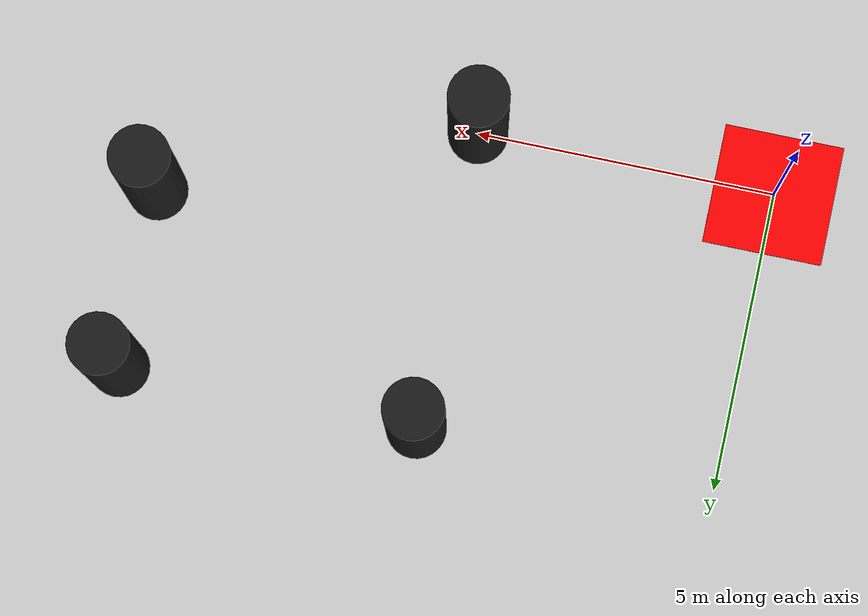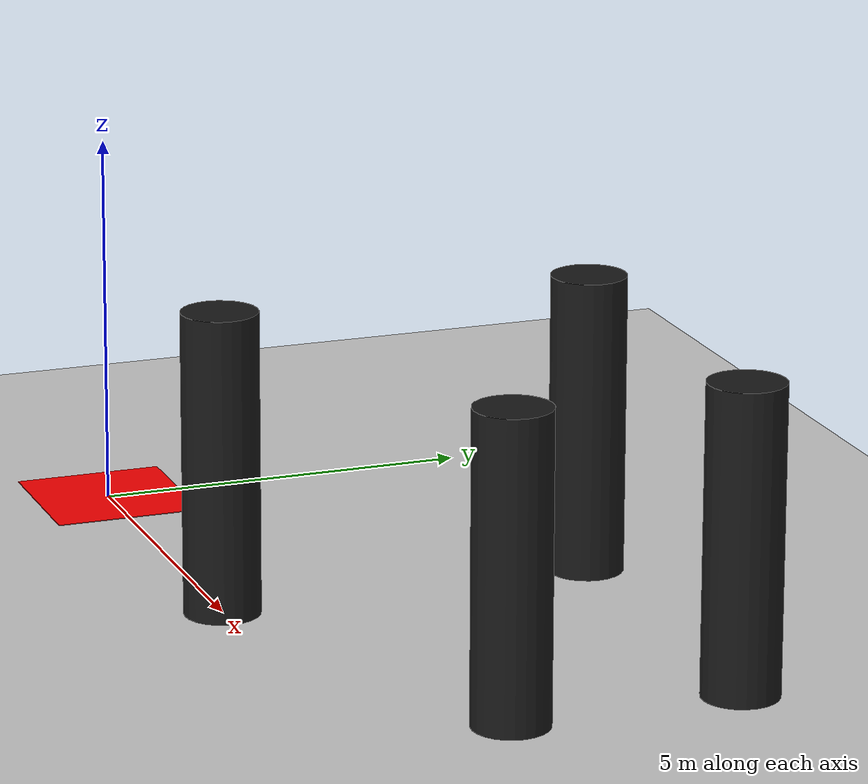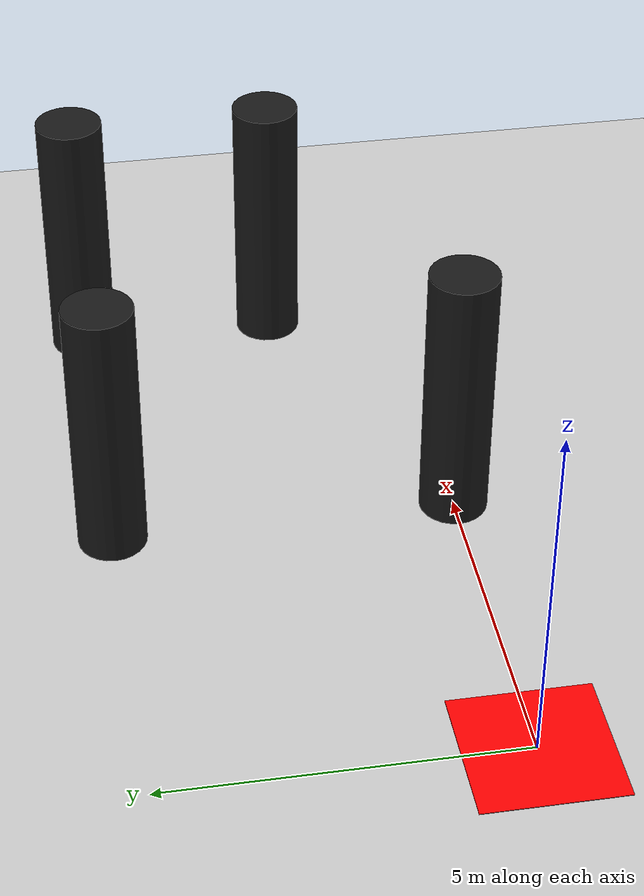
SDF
<?xml version="1.0" ?>
<sdf version="1.8">
  <world name="aerostack_world">
    <physics name="1ms" type="ignored">
      <max_step_size>0.001</max_step_size>
      <real_time_factor>1.0</real_time_factor>
    </physics>
    <plugin
      filename="gz-sim-physics-system"
      name="gz::sim::systems::Physics">
    </plugin>
    <plugin
      filename="gz-sim-user-commands-system"
      name="gz::sim::systems::UserCommands">
    </plugin>
    <plugin
      filename="gz-sim-scene-broadcaster-system"
      name="gz::sim::systems::SceneBroadcaster">
    </plugin>
    <plugin
      filename="gz-sim-sensors-system"
      name="gz::sim::systems::Sensors">
    </plugin>
    <plugin
      filename="gz-sim-imu-system"
      name="gz::sim::systems::Imu">
    </plugin>
    <plugin
      filename="gz-sim-navsat-system"
      name="gz::sim::systems::NavSat">
    </plugin>
    <plugin
      filename="gz-sim-magnetometer-system"
      name="gz::sim::systems::Magnetometer">
    </plugin>
    <plugin
      filename="gz-sim-air-pressure-system"
      name="gz::sim::systems::AirPressure">
    </plugin>
    <plugin
      filename="gz-sim-wind-effects-system"
      name="gz::sim::systems::WindEffects">
      <force_approximation_threshold_abs>10.0</force_approximation_threshold_abs>
      <vertical_velocity_threshold_abs>0.5</vertical_velocity_threshold_abs>
    </plugin>

    <light type="directional" name="sun">
      <cast_shadows>true</cast_shadows>
      <pose>0 0 10 0 0 0</pose>
      <diffuse>0.8 0.8 0.8 1</diffuse>
      <specular>0.2 0.2 0.2 1</specular>
      <attenuation>
        <range>1000</range>
        <constant>0.9</constant>
        <linear>0.01</linear>
        <quadratic>0.001</quadratic>
      </attenuation>
      <direction>-0.5 0.1 -0.9</direction>
    </light>

    <model name="ground_plane">
      <static>true</static>
      <link name="link">
        <collision name="collision">
          <geometry>
            <plane>
              <normal>0 0 1</normal>
              <size>100 100</size>
            </plane>
          </geometry>
        </collision>
        <visual name="visual">
          <geometry>
            <plane>
              <normal>0 0 1</normal>
              <size>100 100</size>
            </plane>
          </geometry>
          <material>
            <ambient>0.8 0.8 0.8 1</ambient>
            <diffuse>0.8 0.8 0.8 1</diffuse>
            <specular>0.8 0.8 0.8 1</specular>
          </material>
        </visual>
      </link>
    </model>

    <model name="pillar_1">
      <static>true</static>
      <pose>5 0 2 0 0 0</pose>
      <link name="link">
        <collision name="collision">
          <geometry><cylinder><radius>0.5</radius><length>4</length></cylinder></geometry>
        </collision>
        <visual name="visual">
          <geometry><cylinder><radius>0.5</radius><length>4</length></cylinder></geometry>
          <material><ambient>0.1 0.1 0.1 1</ambient><diffuse>0.1 0.1 0.1 1</diffuse></material>
        </visual>
      </link>
    </model>

    <model name="pillar_2">
      <static>true</static>
      <pose>10 2 2 0 0 0</pose>
      <link name="link">
        <collision name="collision">
          <geometry><cylinder><radius>0.5</radius><length>4</length></cylinder></geometry>
        </collision>
        <visual name="visual">
          <geometry><cylinder><radius>0.5</radius><length>4</length></cylinder></geometry>
          <material><ambient>0.1 0.1 0.1 1</ambient><diffuse>0.1 0.1 0.1 1</diffuse></material>
        </visual>
      </link>
    </model>

    <model name="pillar_3">
      <static>true</static>
      <pose>5 5 2 0 0 0</pose>
      <link name="link">
        <collision name="collision">
          <geometry><cylinder><radius>0.5</radius><length>4</length></cylinder></geometry>
        </collision>
        <visual name="visual">
          <geometry><cylinder><radius>0.5</radius><length>4</length></cylinder></geometry>
          <material><ambient>0.1 0.1 0.1 1</ambient><diffuse>0.1 0.1 0.1 1</diffuse></material>
        </visual>
      </link>
    </model>

    <model name="pillar_4">
      <static>true</static>
      <pose>10 5 2 0 0 0</pose>
      <link name="link">
        <collision name="collision">
          <geometry><cylinder><radius>0.5</radius><length>4</length></cylinder></geometry>
        </collision>
        <visual name="visual">
          <geometry><cylinder><radius>0.5</radius><length>4</length></cylinder></geometry>
          <material><ambient>0.1 0.1 0.1 1</ambient><diffuse>0.1 0.1 0.1 1</diffuse></material>
        </visual>
      </link>
    </model>

    <model name="landing_pad">
      <static>true</static>
      <pose>0 0 0.01 0 0 0</pose>
      <link name="link">
        <visual name="visual">
          <geometry>
            <box><size>2 2 0.01</size></box>
          </geometry>
          <material>
            <ambient>1 0 0 1</ambient>
            <diffuse>1 0 0 1</diffuse>
          </material>
        </visual>
      </link>
    </model>
  </world>
</sdf>
